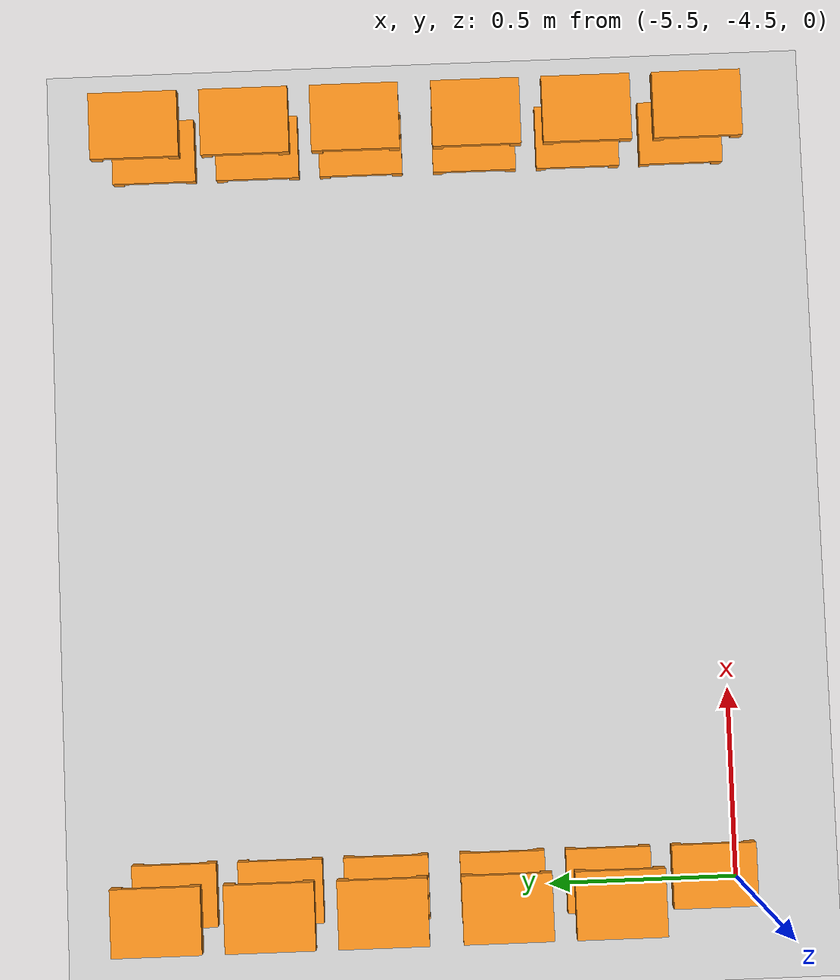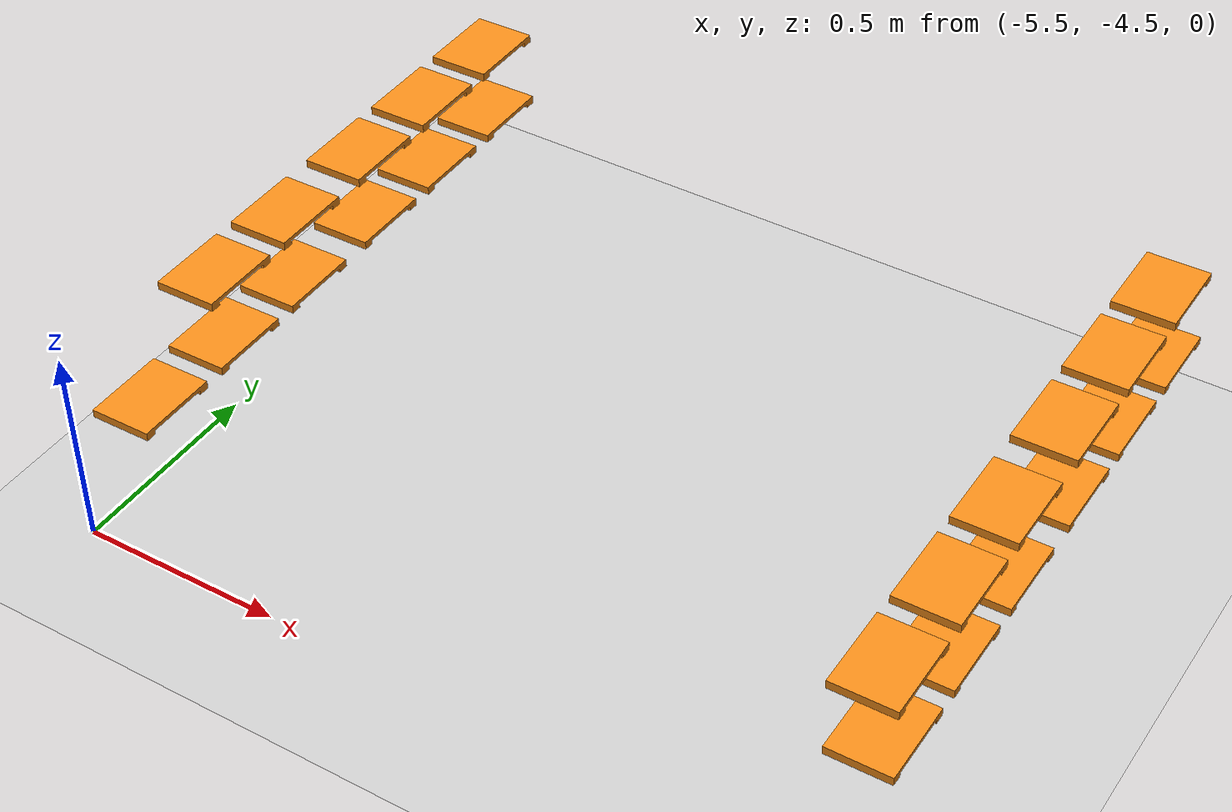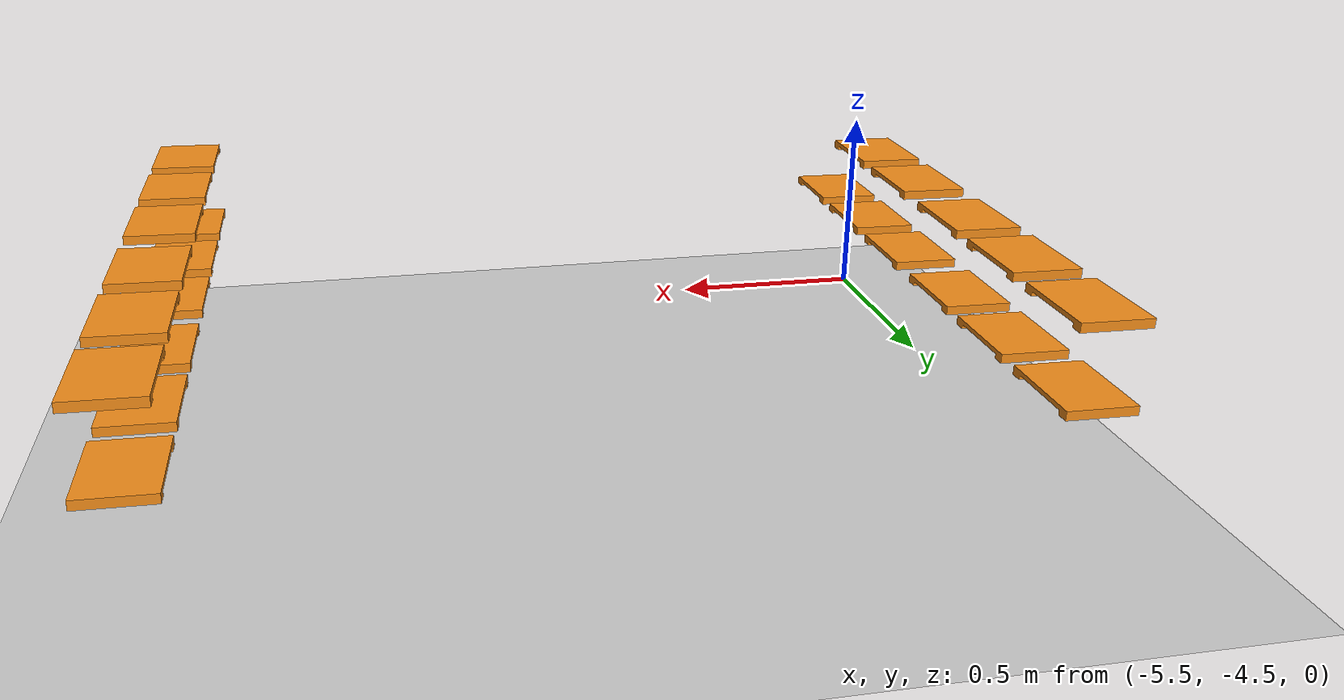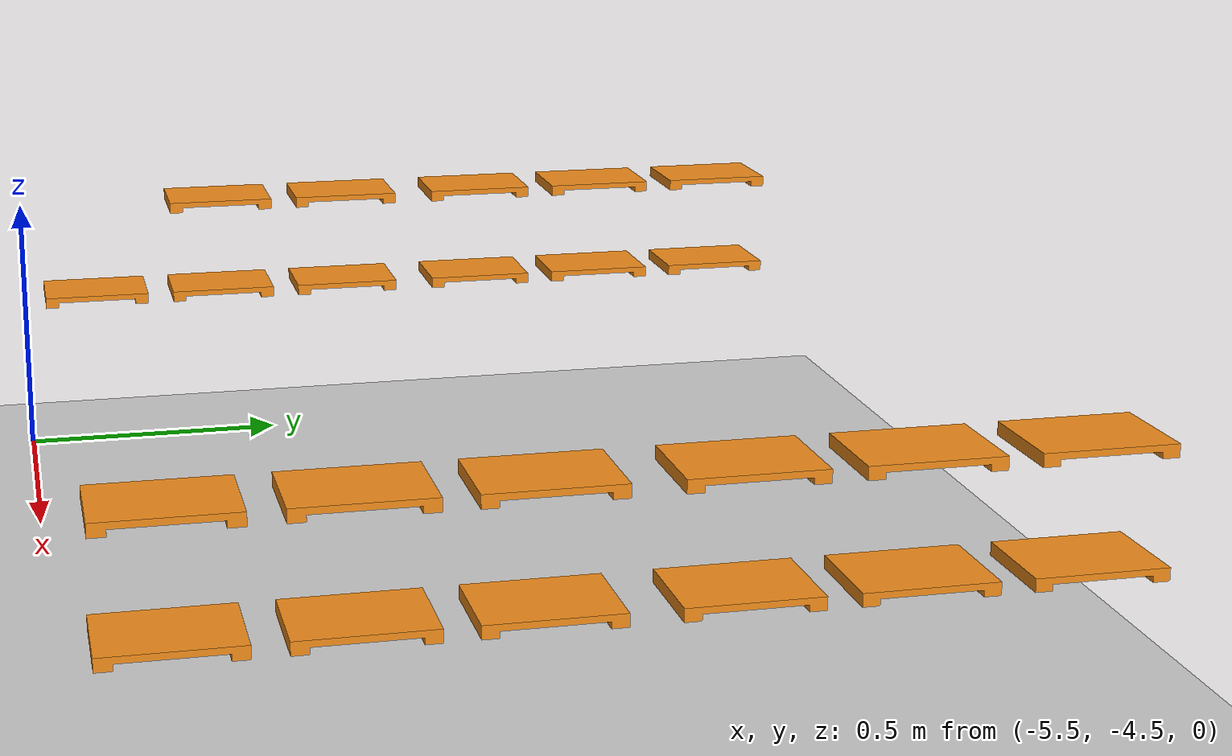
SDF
<sdf version="1.7">
 <world name="default">
  <model name="ground_plane">
   <static>1</static>
   <link name="link">
    <collision name="collision">
     <geometry><plane><normal>0 0 1</normal><size>100 100</size></plane></geometry>
     <surface>
      <contact><collide_bitmask>65535</collide_bitmask></contact>
      <friction><ode><mu>1</mu><mu2>1</mu2></ode></friction>
     </surface>
    </collision>
    <visual name="visual">
     <cast_shadows>0</cast_shadows>
     <geometry><plane><normal>0 0 1</normal><size>100 100</size></plane></geometry>
     <material>
      <script><uri>file://media/materials/scripts/gazebo.material</uri><name>Gazebo/Grey</name></script>
     </material>
    </visual>
   </link>
  </model>
  <model name="pallet_49">
   <pose>-5.39624 -3.088 0.511053 7e-06 -0.012154 -7e-06</pose>
   <link name="link">
    <inertial>
     <pose>0 0 0 0 -0 1.571</pose>
     <inertia>
      <ixx>0.00220983</ixx>
      <ixy>0</ixy>
      <ixz>0</ixz>
      <iyy>0.00128087</iyy>
      <iyz>0</iyz>
      <izz>0.00244903</izz>
     </inertia>
     <mass>0.01</mass>
    </inertial>
    <visual name="visual1">
     <cast_shadows>0</cast_shadows>
     <geometry><mesh><uri>model://pallet/meshes/pallet.stl</uri></mesh></geometry>
     <material>
      <script><uri>file://media/materials/scripts/gazebo.material</uri><name>Gazebo/Orange</name></script>
      <shader type="pixel"><normal_map>__default__</normal_map></shader>
      <emissive>0 0 0 1</emissive>
     </material>
     <pose>0 0 -0 0 -0 1.571</pose>
    </visual>
    <collision name="collision_0">
     <pose>0 0 0 0 -0 1.571</pose>
     <geometry><mesh><uri>model://pallet/meshes/pallet.stl</uri></mesh></geometry>
     <surface>
      <friction>
       <ode><mu>1</mu><mu2>1</mu2><fdir1>0 0 0</fdir1><slip1>0</slip1><slip2>0</slip2></ode>
       <torsional>
        <coefficient>1</coefficient>
        <patch_radius>0</patch_radius>
        <surface_radius>0</surface_radius>
        <use_patch_radius>1</use_patch_radius>
        <ode><slip>0</slip></ode>
       </torsional>
      </friction>
      <bounce><restitution_coefficient>0</restitution_coefficient><threshold>1e+06</threshold></bounce>
      <contact>
       <collide_without_contact>0</collide_without_contact>
       <collide_without_contact_bitmask>1</collide_without_contact_bitmask>
       <collide_bitmask>1</collide_bitmask>
       <ode>
        <soft_cfm>0</soft_cfm>
        <soft_erp>0.2</soft_erp>
        <kp>1e+13</kp>
        <kd>1</kd>
        <max_vel>0.01</max_vel>
        <min_depth>0</min_depth>
       </ode>
       <bullet>
        <split_impulse>1</split_impulse>
        <split_impulse_penetration_threshold>-0.01</split_impulse_penetration_threshold>
        <soft_cfm>0</soft_cfm>
        <soft_erp>0.2</soft_erp>
        <kp>1e+13</kp>
        <kd>1</kd>
       </bullet>
      </contact>
     </surface>
    </collision>
   </link>
   <static>0</static>
  </model>
  <model name="pallet_50">
   <pose>-5.39624 -3.338 0.511051 4.4e-05 -0.012154 2e-06</pose>
   <link name="link">
    <inertial>
     <pose>0 0 0 0 -0 1.571</pose>
     <inertia>
      <ixx>0.00220983</ixx>
      <ixy>0</ixy>
      <ixz>0</ixz>
      <iyy>0.00128087</iyy>
      <iyz>0</iyz>
      <izz>0.00244903</izz>
     </inertia>
     <mass>0.01</mass>
    </inertial>
    <visual name="visual1">
     <cast_shadows>0</cast_shadows>
     <geometry><mesh><uri>model://pallet/meshes/pallet.stl</uri></mesh></geometry>
     <material>
      <script><uri>file://media/materials/scripts/gazebo.material</uri><name>Gazebo/Orange</name></script>
      <shader type="pixel"><normal_map>__default__</normal_map></shader>
      <emissive>0 0 0 1</emissive>
     </material>
     <pose>0 0 -0 0 -0 1.571</pose>
    </visual>
    <collision name="collision_0">
     <pose>0 0 0 0 -0 1.571</pose>
     <geometry><mesh><uri>model://pallet/meshes/pallet.stl</uri></mesh></geometry>
     <surface>
      <friction>
       <ode><mu>1</mu><mu2>1</mu2><fdir1>0 0 0</fdir1><slip1>0</slip1><slip2>0</slip2></ode>
       <torsional>
        <coefficient>1</coefficient>
        <patch_radius>0</patch_radius>
        <surface_radius>0</surface_radius>
        <use_patch_radius>1</use_patch_radius>
        <ode><slip>0</slip></ode>
       </torsional>
      </friction>
      <bounce><restitution_coefficient>0</restitution_coefficient><threshold>1e+06</threshold></bounce>
      <contact>
       <collide_without_contact>0</collide_without_contact>
       <collide_without_contact_bitmask>1</collide_without_contact_bitmask>
       <collide_bitmask>1</collide_bitmask>
       <ode>
        <soft_cfm>0</soft_cfm>
        <soft_erp>0.2</soft_erp>
        <kp>1e+13</kp>
        <kd>1</kd>
        <max_vel>0.01</max_vel>
        <min_depth>0</min_depth>
       </ode>
       <bullet>
        <split_impulse>1</split_impulse>
        <split_impulse_penetration_threshold>-0.01</split_impulse_penetration_threshold>
        <soft_cfm>0</soft_cfm>
        <soft_erp>0.2</soft_erp>
        <kp>1e+13</kp>
        <kd>1</kd>
       </bullet>
      </contact>
     </surface>
    </collision>
   </link>
   <static>0</static>
  </model>
  <model name="pallet_51">
   <pose>-5.39624 -3.588 0.511049 4e-05 -0.012153 3e-06</pose>
   <link name="link">
    <inertial>
     <pose>0 0 0 0 -0 1.571</pose>
     <inertia>
      <ixx>0.00220983</ixx>
      <ixy>0</ixy>
      <ixz>0</ixz>
      <iyy>0.00128087</iyy>
      <iyz>0</iyz>
      <izz>0.00244903</izz>
     </inertia>
     <mass>0.01</mass>
    </inertial>
    <visual name="visual1">
     <cast_shadows>0</cast_shadows>
     <geometry><mesh><uri>model://pallet/meshes/pallet.stl</uri></mesh></geometry>
     <material>
      <script><uri>file://media/materials/scripts/gazebo.material</uri><name>Gazebo/Orange</name></script>
      <shader type="pixel"><normal_map>__default__</normal_map></shader>
      <emissive>0 0 0 1</emissive>
     </material>
     <pose>0 0 -0 0 -0 1.571</pose>
    </visual>
    <collision name="collision_0">
     <pose>0 0 0 0 -0 1.571</pose>
     <geometry><mesh><uri>model://pallet/meshes/pallet.stl</uri></mesh></geometry>
     <surface>
      <friction>
       <ode><mu>1</mu><mu2>1</mu2><fdir1>0 0 0</fdir1><slip1>0</slip1><slip2>0</slip2></ode>
       <torsional>
        <coefficient>1</coefficient>
        <patch_radius>0</patch_radius>
        <surface_radius>0</surface_radius>
        <use_patch_radius>1</use_patch_radius>
        <ode><slip>0</slip></ode>
       </torsional>
      </friction>
      <bounce><restitution_coefficient>0</restitution_coefficient><threshold>1e+06</threshold></bounce>
      <contact>
       <collide_without_contact>0</collide_without_contact>
       <collide_without_contact_bitmask>1</collide_without_contact_bitmask>
       <collide_bitmask>1</collide_bitmask>
       <ode>
        <soft_cfm>0</soft_cfm>
        <soft_erp>0.2</soft_erp>
        <kp>1e+13</kp>
        <kd>1</kd>
        <max_vel>0.01</max_vel>
        <min_depth>0</min_depth>
       </ode>
       <bullet>
        <split_impulse>1</split_impulse>
        <split_impulse_penetration_threshold>-0.01</split_impulse_penetration_threshold>
        <soft_cfm>0</soft_cfm>
        <soft_erp>0.2</soft_erp>
        <kp>1e+13</kp>
        <kd>1</kd>
       </bullet>
      </contact>
     </surface>
    </collision>
   </link>
   <static>0</static>
  </model>
  <model name="pallet_52">
   <pose>-5.39624 -3.8625 0.511052 -0 -0.01216 4e-06</pose>
   <link name="link">
    <inertial>
     <pose>0 0 0 0 -0 1.571</pose>
     <inertia>
      <ixx>0.00220983</ixx>
      <ixy>0</ixy>
      <ixz>0</ixz>
      <iyy>0.00128087</iyy>
      <iyz>0</iyz>
      <izz>0.00244903</izz>
     </inertia>
     <mass>0.01</mass>
    </inertial>
    <visual name="visual1">
     <cast_shadows>0</cast_shadows>
     <geometry><mesh><uri>model://pallet/meshes/pallet.stl</uri></mesh></geometry>
     <material>
      <script><uri>file://media/materials/scripts/gazebo.material</uri><name>Gazebo/Orange</name></script>
      <shader type="pixel"><normal_map>__default__</normal_map></shader>
      <emissive>0 0 0 1</emissive>
     </material>
     <pose>0 0 -0 0 -0 1.571</pose>
    </visual>
    <collision name="collision_0">
     <pose>0 0 0 0 -0 1.571</pose>
     <geometry><mesh><uri>model://pallet/meshes/pallet.stl</uri></mesh></geometry>
     <surface>
      <friction>
       <ode><mu>1</mu><mu2>1</mu2><fdir1>0 0 0</fdir1><slip1>0</slip1><slip2>0</slip2></ode>
       <torsional>
        <coefficient>1</coefficient>
        <patch_radius>0</patch_radius>
        <surface_radius>0</surface_radius>
        <use_patch_radius>1</use_patch_radius>
        <ode><slip>0</slip></ode>
       </torsional>
      </friction>
      <bounce><restitution_coefficient>0</restitution_coefficient><threshold>1e+06</threshold></bounce>
      <contact>
       <collide_without_contact>0</collide_without_contact>
       <collide_without_contact_bitmask>1</collide_without_contact_bitmask>
       <collide_bitmask>1</collide_bitmask>
       <ode>
        <soft_cfm>0</soft_cfm>
        <soft_erp>0.2</soft_erp>
        <kp>1e+13</kp>
        <kd>1</kd>
        <max_vel>0.01</max_vel>
        <min_depth>0</min_depth>
       </ode>
       <bullet>
        <split_impulse>1</split_impulse>
        <split_impulse_penetration_threshold>-0.01</split_impulse_penetration_threshold>
        <soft_cfm>0</soft_cfm>
        <soft_erp>0.2</soft_erp>
        <kp>1e+13</kp>
        <kd>1</kd>
       </bullet>
      </contact>
     </surface>
    </collision>
   </link>
   <static>0</static>
  </model>
  <model name="pallet_53">
   <pose>-5.39623 -4.1125 0.511049 2.3e-05 -0.012155 2e-06</pose>
   <link name="link">
    <inertial>
     <pose>0 0 0 0 -0 1.571</pose>
     <inertia>
      <ixx>0.00220983</ixx>
      <ixy>0</ixy>
      <ixz>0</ixz>
      <iyy>0.00128087</iyy>
      <iyz>0</iyz>
      <izz>0.00244903</izz>
     </inertia>
     <mass>0.01</mass>
    </inertial>
    <visual name="visual1">
     <cast_shadows>0</cast_shadows>
     <geometry><mesh><uri>model://pallet/meshes/pallet.stl</uri></mesh></geometry>
     <material>
      <script><uri>file://media/materials/scripts/gazebo.material</uri><name>Gazebo/Orange</name></script>
      <shader type="pixel"><normal_map>__default__</normal_map></shader>
      <emissive>0 0 0 1</emissive>
     </material>
     <pose>0 0 -0 0 -0 1.571</pose>
    </visual>
    <collision name="collision_0">
     <pose>0 0 0 0 -0 1.571</pose>
     <geometry><mesh><uri>model://pallet/meshes/pallet.stl</uri></mesh></geometry>
     <surface>
      <friction>
       <ode><mu>1</mu><mu2>1</mu2><fdir1>0 0 0</fdir1><slip1>0</slip1><slip2>0</slip2></ode>
       <torsional>
        <coefficient>1</coefficient>
        <patch_radius>0</patch_radius>
        <surface_radius>0</surface_radius>
        <use_patch_radius>1</use_patch_radius>
        <ode><slip>0</slip></ode>
       </torsional>
      </friction>
      <bounce><restitution_coefficient>0</restitution_coefficient><threshold>1e+06</threshold></bounce>
      <contact>
       <collide_without_contact>0</collide_without_contact>
       <collide_without_contact_bitmask>1</collide_without_contact_bitmask>
       <collide_bitmask>1</collide_bitmask>
       <ode>
        <soft_cfm>0</soft_cfm>
        <soft_erp>0.2</soft_erp>
        <kp>1e+13</kp>
        <kd>1</kd>
        <max_vel>0.01</max_vel>
        <min_depth>0</min_depth>
       </ode>
       <bullet>
        <split_impulse>1</split_impulse>
        <split_impulse_penetration_threshold>-0.01</split_impulse_penetration_threshold>
        <soft_cfm>0</soft_cfm>
        <soft_erp>0.2</soft_erp>
        <kp>1e+13</kp>
        <kd>1</kd>
       </bullet>
      </contact>
     </surface>
    </collision>
   </link>
   <static>0</static>
  </model>
  <model name="pallet_61">
   <pose>-5.39405 -3.088 0.331065 7e-06 -0.012154 -4e-06</pose>
   <link name="link">
    <inertial>
     <pose>0 0 0 0 -0 1.571</pose>
     <inertia>
      <ixx>0.00220983</ixx>
      <ixy>0</ixy>
      <ixz>0</ixz>
      <iyy>0.00128087</iyy>
      <iyz>0</iyz>
      <izz>0.00244903</izz>
     </inertia>
     <mass>0.01</mass>
    </inertial>
    <visual name="visual1">
     <cast_shadows>0</cast_shadows>
     <geometry><mesh><uri>model://pallet/meshes/pallet.stl</uri></mesh></geometry>
     <material>
      <script><uri>file://media/materials/scripts/gazebo.material</uri><name>Gazebo/Orange</name></script>
      <shader type="pixel"><normal_map>__default__</normal_map></shader>
      <emissive>0 0 0 1</emissive>
     </material>
     <pose>0 0 -0 0 -0 1.571</pose>
    </visual>
    <collision name="collision_0">
     <pose>0 0 0 0 -0 1.571</pose>
     <geometry><mesh><uri>model://pallet/meshes/pallet.stl</uri></mesh></geometry>
     <surface>
      <friction>
       <ode><mu>1</mu><mu2>1</mu2><fdir1>0 0 0</fdir1><slip1>0</slip1><slip2>0</slip2></ode>
       <torsional>
        <coefficient>1</coefficient>
        <patch_radius>0</patch_radius>
        <surface_radius>0</surface_radius>
        <use_patch_radius>1</use_patch_radius>
        <ode><slip>0</slip></ode>
       </torsional>
      </friction>
      <bounce><restitution_coefficient>0</restitution_coefficient><threshold>1e+06</threshold></bounce>
      <contact>
       <collide_without_contact>0</collide_without_contact>
       <collide_without_contact_bitmask>1</collide_without_contact_bitmask>
       <collide_bitmask>1</collide_bitmask>
       <ode>
        <soft_cfm>0</soft_cfm>
        <soft_erp>0.2</soft_erp>
        <kp>1e+13</kp>
        <kd>1</kd>
        <max_vel>0.01</max_vel>
        <min_depth>0</min_depth>
       </ode>
       <bullet>
        <split_impulse>1</split_impulse>
        <split_impulse_penetration_threshold>-0.01</split_impulse_penetration_threshold>
        <soft_cfm>0</soft_cfm>
        <soft_erp>0.2</soft_erp>
        <kp>1e+13</kp>
        <kd>1</kd>
       </bullet>
      </contact>
     </surface>
    </collision>
   </link>
   <static>0</static>
  </model>
  <model name="pallet_62">
   <pose>-5.39405 -3.338 0.331064 4.1e-05 -0.012155 3e-06</pose>
   <link name="link">
    <inertial>
     <pose>0 0 0 0 -0 1.571</pose>
     <inertia>
      <ixx>0.00220983</ixx>
      <ixy>0</ixy>
      <ixz>0</ixz>
      <iyy>0.00128087</iyy>
      <iyz>0</iyz>
      <izz>0.00244903</izz>
     </inertia>
     <mass>0.01</mass>
    </inertial>
    <visual name="visual1">
     <cast_shadows>0</cast_shadows>
     <geometry><mesh><uri>model://pallet/meshes/pallet.stl</uri></mesh></geometry>
     <material>
      <script><uri>file://media/materials/scripts/gazebo.material</uri><name>Gazebo/Orange</name></script>
      <shader type="pixel"><normal_map>__default__</normal_map></shader>
      <emissive>0 0 0 1</emissive>
     </material>
     <pose>0 0 -0 0 -0 1.571</pose>
    </visual>
    <collision name="collision_0">
     <pose>0 0 0 0 -0 1.571</pose>
     <geometry><mesh><uri>model://pallet/meshes/pallet.stl</uri></mesh></geometry>
     <surface>
      <friction>
       <ode><mu>1</mu><mu2>1</mu2><fdir1>0 0 0</fdir1><slip1>0</slip1><slip2>0</slip2></ode>
       <torsional>
        <coefficient>1</coefficient>
        <patch_radius>0</patch_radius>
        <surface_radius>0</surface_radius>
        <use_patch_radius>1</use_patch_radius>
        <ode><slip>0</slip></ode>
       </torsional>
      </friction>
      <bounce><restitution_coefficient>0</restitution_coefficient><threshold>1e+06</threshold></bounce>
      <contact>
       <collide_without_contact>0</collide_without_contact>
       <collide_without_contact_bitmask>1</collide_without_contact_bitmask>
       <collide_bitmask>1</collide_bitmask>
       <ode>
        <soft_cfm>0</soft_cfm>
        <soft_erp>0.2</soft_erp>
        <kp>1e+13</kp>
        <kd>1</kd>
        <max_vel>0.01</max_vel>
        <min_depth>0</min_depth>
       </ode>
       <bullet>
        <split_impulse>1</split_impulse>
        <split_impulse_penetration_threshold>-0.01</split_impulse_penetration_threshold>
        <soft_cfm>0</soft_cfm>
        <soft_erp>0.2</soft_erp>
        <kp>1e+13</kp>
        <kd>1</kd>
       </bullet>
      </contact>
     </surface>
    </collision>
   </link>
   <static>0</static>
  </model>
  <model name="pallet_63">
   <pose>-5.39405 -3.588 0.331063 3.6e-05 -0.012153 5e-06</pose>
   <link name="link">
    <inertial>
     <pose>0 0 0 0 -0 1.571</pose>
     <inertia>
      <ixx>0.00220983</ixx>
      <ixy>0</ixy>
      <ixz>0</ixz>
      <iyy>0.00128087</iyy>
      <iyz>0</iyz>
      <izz>0.00244903</izz>
     </inertia>
     <mass>0.01</mass>
    </inertial>
    <visual name="visual1">
     <cast_shadows>0</cast_shadows>
     <geometry><mesh><uri>model://pallet/meshes/pallet.stl</uri></mesh></geometry>
     <material>
      <script><uri>file://media/materials/scripts/gazebo.material</uri><name>Gazebo/Orange</name></script>
      <shader type="pixel"><normal_map>__default__</normal_map></shader>
      <emissive>0 0 0 1</emissive>
     </material>
     <pose>0 0 -0 0 -0 1.571</pose>
    </visual>
    <collision name="collision_0">
     <pose>0 0 0 0 -0 1.571</pose>
     <geometry><mesh><uri>model://pallet/meshes/pallet.stl</uri></mesh></geometry>
     <surface>
      <friction>
       <ode><mu>1</mu><mu2>1</mu2><fdir1>0 0 0</fdir1><slip1>0</slip1><slip2>0</slip2></ode>
       <torsional>
        <coefficient>1</coefficient>
        <patch_radius>0</patch_radius>
        <surface_radius>0</surface_radius>
        <use_patch_radius>1</use_patch_radius>
        <ode><slip>0</slip></ode>
       </torsional>
      </friction>
      <bounce><restitution_coefficient>0</restitution_coefficient><threshold>1e+06</threshold></bounce>
      <contact>
       <collide_without_contact>0</collide_without_contact>
       <collide_without_contact_bitmask>1</collide_without_contact_bitmask>
       <collide_bitmask>1</collide_bitmask>
       <ode>
        <soft_cfm>0</soft_cfm>
        <soft_erp>0.2</soft_erp>
        <kp>1e+13</kp>
        <kd>1</kd>
        <max_vel>0.01</max_vel>
        <min_depth>0</min_depth>
       </ode>
       <bullet>
        <split_impulse>1</split_impulse>
        <split_impulse_penetration_threshold>-0.01</split_impulse_penetration_threshold>
        <soft_cfm>0</soft_cfm>
        <soft_erp>0.2</soft_erp>
        <kp>1e+13</kp>
        <kd>1</kd>
       </bullet>
      </contact>
     </surface>
    </collision>
   </link>
   <static>0</static>
  </model>
  <model name="pallet_64">
   <pose>-5.39405 -3.8625 0.331065 6e-06 -0.012161 4e-06</pose>
   <link name="link">
    <inertial>
     <pose>0 0 0 0 -0 1.571</pose>
     <inertia>
      <ixx>0.00220983</ixx>
      <ixy>0</ixy>
      <ixz>0</ixz>
      <iyy>0.00128087</iyy>
      <iyz>0</iyz>
      <izz>0.00244903</izz>
     </inertia>
     <mass>0.01</mass>
    </inertial>
    <visual name="visual1">
     <cast_shadows>0</cast_shadows>
     <geometry><mesh><uri>model://pallet/meshes/pallet.stl</uri></mesh></geometry>
     <material>
      <script><uri>file://media/materials/scripts/gazebo.material</uri><name>Gazebo/Orange</name></script>
      <shader type="pixel"><normal_map>__default__</normal_map></shader>
      <emissive>0 0 0 1</emissive>
     </material>
     <pose>0 0 -0 0 -0 1.571</pose>
    </visual>
    <collision name="collision_0">
     <pose>0 0 0 0 -0 1.571</pose>
     <geometry><mesh><uri>model://pallet/meshes/pallet.stl</uri></mesh></geometry>
     <surface>
      <friction>
       <ode><mu>1</mu><mu2>1</mu2><fdir1>0 0 0</fdir1><slip1>0</slip1><slip2>0</slip2></ode>
       <torsional>
        <coefficient>1</coefficient>
        <patch_radius>0</patch_radius>
        <surface_radius>0</surface_radius>
        <use_patch_radius>1</use_patch_radius>
        <ode><slip>0</slip></ode>
       </torsional>
      </friction>
      <bounce><restitution_coefficient>0</restitution_coefficient><threshold>1e+06</threshold></bounce>
      <contact>
       <collide_without_contact>0</collide_without_contact>
       <collide_without_contact_bitmask>1</collide_without_contact_bitmask>
       <collide_bitmask>1</collide_bitmask>
       <ode>
        <soft_cfm>0</soft_cfm>
        <soft_erp>0.2</soft_erp>
        <kp>1e+13</kp>
        <kd>1</kd>
        <max_vel>0.01</max_vel>
        <min_depth>0</min_depth>
       </ode>
       <bullet>
        <split_impulse>1</split_impulse>
        <split_impulse_penetration_threshold>-0.01</split_impulse_penetration_threshold>
        <soft_cfm>0</soft_cfm>
        <soft_erp>0.2</soft_erp>
        <kp>1e+13</kp>
        <kd>1</kd>
       </bullet>
      </contact>
     </surface>
    </collision>
   </link>
   <static>0</static>
  </model>
  <model name="pallet_65">
   <pose>-5.39405 -4.1125 0.331062 3.8e-05 -0.012154 7e-06</pose>
   <link name="link">
    <inertial>
     <pose>0 0 0 0 -0 1.571</pose>
     <inertia>
      <ixx>0.00220983</ixx>
      <ixy>0</ixy>
      <ixz>0</ixz>
      <iyy>0.00128087</iyy>
      <iyz>0</iyz>
      <izz>0.00244903</izz>
     </inertia>
     <mass>0.01</mass>
    </inertial>
    <visual name="visual1">
     <cast_shadows>0</cast_shadows>
     <geometry><mesh><uri>model://pallet/meshes/pallet.stl</uri></mesh></geometry>
     <material>
      <script><uri>file://media/materials/scripts/gazebo.material</uri><name>Gazebo/Orange</name></script>
      <shader type="pixel"><normal_map>__default__</normal_map></shader>
      <emissive>0 0 0 1</emissive>
     </material>
     <pose>0 0 -0 0 -0 1.571</pose>
    </visual>
    <collision name="collision_0">
     <pose>0 0 0 0 -0 1.571</pose>
     <geometry><mesh><uri>model://pallet/meshes/pallet.stl</uri></mesh></geometry>
     <surface>
      <friction>
       <ode><mu>1</mu><mu2>1</mu2><fdir1>0 0 0</fdir1><slip1>0</slip1><slip2>0</slip2></ode>
       <torsional>
        <coefficient>1</coefficient>
        <patch_radius>0</patch_radius>
        <surface_radius>0</surface_radius>
        <use_patch_radius>1</use_patch_radius>
        <ode><slip>0</slip></ode>
       </torsional>
      </friction>
      <bounce><restitution_coefficient>0</restitution_coefficient><threshold>1e+06</threshold></bounce>
      <contact>
       <collide_without_contact>0</collide_without_contact>
       <collide_without_contact_bitmask>1</collide_without_contact_bitmask>
       <collide_bitmask>1</collide_bitmask>
       <ode>
        <soft_cfm>0</soft_cfm>
        <soft_erp>0.2</soft_erp>
        <kp>1e+13</kp>
        <kd>1</kd>
        <max_vel>0.01</max_vel>
        <min_depth>0</min_depth>
       </ode>
       <bullet>
        <split_impulse>1</split_impulse>
        <split_impulse_penetration_threshold>-0.01</split_impulse_penetration_threshold>
        <soft_cfm>0</soft_cfm>
        <soft_erp>0.2</soft_erp>
        <kp>1e+13</kp>
        <kd>1</kd>
       </bullet>
      </contact>
     </surface>
    </collision>
   </link>
   <static>0</static>
  </model>
  <model name="pallet_66">
   <pose>-5.39404 -4.3625 0.331062 3.1e-05 -0.012154 8e-06</pose>
   <link name="link">
    <inertial>
     <pose>0 0 0 0 -0 1.571</pose>
     <inertia>
      <ixx>0.00220983</ixx>
      <ixy>0</ixy>
      <ixz>0</ixz>
      <iyy>0.00128087</iyy>
      <iyz>0</iyz>
      <izz>0.00244903</izz>
     </inertia>
     <mass>0.01</mass>
    </inertial>
    <visual name="visual1">
     <cast_shadows>0</cast_shadows>
     <geometry><mesh><uri>model://pallet/meshes/pallet.stl</uri></mesh></geometry>
     <material>
      <script><uri>file://media/materials/scripts/gazebo.material</uri><name>Gazebo/Orange</name></script>
      <shader type="pixel"><normal_map>__default__</normal_map></shader>
      <emissive>0 0 0 1</emissive>
     </material>
     <pose>0 0 -0 0 -0 1.571</pose>
    </visual>
    <collision name="collision_0">
     <pose>0 0 0 0 -0 1.571</pose>
     <geometry><mesh><uri>model://pallet/meshes/pallet.stl</uri></mesh></geometry>
     <surface>
      <friction>
       <ode><mu>1</mu><mu2>1</mu2><fdir1>0 0 0</fdir1><slip1>0</slip1><slip2>0</slip2></ode>
       <torsional>
        <coefficient>1</coefficient>
        <patch_radius>0</patch_radius>
        <surface_radius>0</surface_radius>
        <use_patch_radius>1</use_patch_radius>
        <ode><slip>0</slip></ode>
       </torsional>
      </friction>
      <bounce><restitution_coefficient>0</restitution_coefficient><threshold>1e+06</threshold></bounce>
      <contact>
       <collide_without_contact>0</collide_without_contact>
       <collide_without_contact_bitmask>1</collide_without_contact_bitmask>
       <collide_bitmask>1</collide_bitmask>
       <ode>
        <soft_cfm>0</soft_cfm>
        <soft_erp>0.2</soft_erp>
        <kp>1e+13</kp>
        <kd>1</kd>
        <max_vel>0.01</max_vel>
        <min_depth>0</min_depth>
       </ode>
       <bullet>
        <split_impulse>1</split_impulse>
        <split_impulse_penetration_threshold>-0.01</split_impulse_penetration_threshold>
        <soft_cfm>0</soft_cfm>
        <soft_erp>0.2</soft_erp>
        <kp>1e+13</kp>
        <kd>1</kd>
       </bullet>
      </contact>
     </surface>
    </collision>
   </link>
   <static>0</static>
  </model>
  <model name="pallet_73">
   <pose>-3.61435 -3.088 0.330994 5e-06 -0.013046 -3e-06</pose>
   <link name="link">
    <inertial>
     <pose>0 0 0 0 -0 1.571</pose>
     <inertia>
      <ixx>0.00220983</ixx>
      <ixy>0</ixy>
      <ixz>0</ixz>
      <iyy>0.00128087</iyy>
      <iyz>0</iyz>
      <izz>0.00244903</izz>
     </inertia>
     <mass>0.01</mass>
    </inertial>
    <visual name="visual1">
     <cast_shadows>0</cast_shadows>
     <geometry><mesh><uri>model://pallet/meshes/pallet.stl</uri></mesh></geometry>
     <material>
      <script><uri>file://media/materials/scripts/gazebo.material</uri><name>Gazebo/Orange</name></script>
      <shader type="pixel"><normal_map>__default__</normal_map></shader>
      <emissive>0 0 0 1</emissive>
     </material>
     <pose>0 0 -0 0 -0 1.571</pose>
    </visual>
    <collision name="collision_0">
     <pose>0 0 0 0 -0 1.571</pose>
     <geometry><mesh><uri>model://pallet/meshes/pallet.stl</uri></mesh></geometry>
     <surface>
      <friction>
       <ode><mu>1</mu><mu2>1</mu2><fdir1>0 0 0</fdir1><slip1>0</slip1><slip2>0</slip2></ode>
       <torsional>
        <coefficient>1</coefficient>
        <patch_radius>0</patch_radius>
        <surface_radius>0</surface_radius>
        <use_patch_radius>1</use_patch_radius>
        <ode><slip>0</slip></ode>
       </torsional>
      </friction>
      <bounce><restitution_coefficient>0</restitution_coefficient><threshold>1e+06</threshold></bounce>
      <contact>
       <collide_without_contact>0</collide_without_contact>
       <collide_without_contact_bitmask>1</collide_without_contact_bitmask>
       <collide_bitmask>1</collide_bitmask>
       <ode>
        <soft_cfm>0</soft_cfm>
        <soft_erp>0.2</soft_erp>
        <kp>1e+13</kp>
        <kd>1</kd>
        <max_vel>0.01</max_vel>
        <min_depth>0</min_depth>
       </ode>
       <bullet>
        <split_impulse>1</split_impulse>
        <split_impulse_penetration_threshold>-0.01</split_impulse_penetration_threshold>
        <soft_cfm>0</soft_cfm>
        <soft_erp>0.2</soft_erp>
        <kp>1e+13</kp>
        <kd>1</kd>
       </bullet>
      </contact>
     </surface>
    </collision>
   </link>
   <static>0</static>
  </model>
  <model name="pallet_74">
   <pose>-3.61435 -3.338 0.330994 4.1e-05 -0.013042 6e-06</pose>
   <link name="link">
    <inertial>
     <pose>0 0 0 0 -0 1.571</pose>
     <inertia>
      <ixx>0.00220983</ixx>
      <ixy>0</ixy>
      <ixz>0</ixz>
      <iyy>0.00128087</iyy>
      <iyz>0</iyz>
      <izz>0.00244903</izz>
     </inertia>
     <mass>0.01</mass>
    </inertial>
    <visual name="visual1">
     <cast_shadows>0</cast_shadows>
     <geometry><mesh><uri>model://pallet/meshes/pallet.stl</uri></mesh></geometry>
     <material>
      <script><uri>file://media/materials/scripts/gazebo.material</uri><name>Gazebo/Orange</name></script>
      <shader type="pixel"><normal_map>__default__</normal_map></shader>
      <emissive>0 0 0 1</emissive>
     </material>
     <pose>0 0 -0 0 -0 1.571</pose>
    </visual>
    <collision name="collision_0">
     <pose>0 0 0 0 -0 1.571</pose>
     <geometry><mesh><uri>model://pallet/meshes/pallet.stl</uri></mesh></geometry>
     <surface>
      <friction>
       <ode><mu>1</mu><mu2>1</mu2><fdir1>0 0 0</fdir1><slip1>0</slip1><slip2>0</slip2></ode>
       <torsional>
        <coefficient>1</coefficient>
        <patch_radius>0</patch_radius>
        <surface_radius>0</surface_radius>
        <use_patch_radius>1</use_patch_radius>
        <ode><slip>0</slip></ode>
       </torsional>
      </friction>
      <bounce><restitution_coefficient>0</restitution_coefficient><threshold>1e+06</threshold></bounce>
      <contact>
       <collide_without_contact>0</collide_without_contact>
       <collide_without_contact_bitmask>1</collide_without_contact_bitmask>
       <collide_bitmask>1</collide_bitmask>
       <ode>
        <soft_cfm>0</soft_cfm>
        <soft_erp>0.2</soft_erp>
        <kp>1e+13</kp>
        <kd>1</kd>
        <max_vel>0.01</max_vel>
        <min_depth>0</min_depth>
       </ode>
       <bullet>
        <split_impulse>1</split_impulse>
        <split_impulse_penetration_threshold>-0.01</split_impulse_penetration_threshold>
        <soft_cfm>0</soft_cfm>
        <soft_erp>0.2</soft_erp>
        <kp>1e+13</kp>
        <kd>1</kd>
       </bullet>
      </contact>
     </surface>
    </collision>
   </link>
   <static>0</static>
  </model>
  <model name="pallet_75">
   <pose>-3.61435 -3.588 0.330994 2.6e-05 -0.013042 1.2e-05</pose>
   <link name="link">
    <inertial>
     <pose>0 0 0 0 -0 1.571</pose>
     <inertia>
      <ixx>0.00220983</ixx>
      <ixy>0</ixy>
      <ixz>0</ixz>
      <iyy>0.00128087</iyy>
      <iyz>0</iyz>
      <izz>0.00244903</izz>
     </inertia>
     <mass>0.01</mass>
    </inertial>
    <visual name="visual1">
     <cast_shadows>0</cast_shadows>
     <geometry><mesh><uri>model://pallet/meshes/pallet.stl</uri></mesh></geometry>
     <material>
      <script><uri>file://media/materials/scripts/gazebo.material</uri><name>Gazebo/Orange</name></script>
      <shader type="pixel"><normal_map>__default__</normal_map></shader>
      <emissive>0 0 0 1</emissive>
     </material>
     <pose>0 0 -0 0 -0 1.571</pose>
    </visual>
    <collision name="collision_0">
     <pose>0 0 0 0 -0 1.571</pose>
     <geometry><mesh><uri>model://pallet/meshes/pallet.stl</uri></mesh></geometry>
     <surface>
      <friction>
       <ode><mu>1</mu><mu2>1</mu2><fdir1>0 0 0</fdir1><slip1>0</slip1><slip2>0</slip2></ode>
       <torsional>
        <coefficient>1</coefficient>
        <patch_radius>0</patch_radius>
        <surface_radius>0</surface_radius>
        <use_patch_radius>1</use_patch_radius>
        <ode><slip>0</slip></ode>
       </torsional>
      </friction>
      <bounce><restitution_coefficient>0</restitution_coefficient><threshold>1e+06</threshold></bounce>
      <contact>
       <collide_without_contact>0</collide_without_contact>
       <collide_without_contact_bitmask>1</collide_without_contact_bitmask>
       <collide_bitmask>1</collide_bitmask>
       <ode>
        <soft_cfm>0</soft_cfm>
        <soft_erp>0.2</soft_erp>
        <kp>1e+13</kp>
        <kd>1</kd>
        <max_vel>0.01</max_vel>
        <min_depth>0</min_depth>
       </ode>
       <bullet>
        <split_impulse>1</split_impulse>
        <split_impulse_penetration_threshold>-0.01</split_impulse_penetration_threshold>
        <soft_cfm>0</soft_cfm>
        <soft_erp>0.2</soft_erp>
        <kp>1e+13</kp>
        <kd>1</kd>
       </bullet>
      </contact>
     </surface>
    </collision>
   </link>
   <static>0</static>
  </model>
  <model name="pallet_76">
   <pose>-3.61434 -3.8625 0.330995 1.1e-05 -0.013046 7e-06</pose>
   <link name="link">
    <inertial>
     <pose>0 0 0 0 -0 1.571</pose>
     <inertia>
      <ixx>0.00220983</ixx>
      <ixy>0</ixy>
      <ixz>0</ixz>
      <iyy>0.00128087</iyy>
      <iyz>0</iyz>
      <izz>0.00244903</izz>
     </inertia>
     <mass>0.01</mass>
    </inertial>
    <visual name="visual1">
     <cast_shadows>0</cast_shadows>
     <geometry><mesh><uri>model://pallet/meshes/pallet.stl</uri></mesh></geometry>
     <material>
      <script><uri>file://media/materials/scripts/gazebo.material</uri><name>Gazebo/Orange</name></script>
      <shader type="pixel"><normal_map>__default__</normal_map></shader>
      <emissive>0 0 0 1</emissive>
     </material>
     <pose>0 0 -0 0 -0 1.571</pose>
    </visual>
    <collision name="collision_0">
     <pose>0 0 0 0 -0 1.571</pose>
     <geometry><mesh><uri>model://pallet/meshes/pallet.stl</uri></mesh></geometry>
     <surface>
      <friction>
       <ode><mu>1</mu><mu2>1</mu2><fdir1>0 0 0</fdir1><slip1>0</slip1><slip2>0</slip2></ode>
       <torsional>
        <coefficient>1</coefficient>
        <patch_radius>0</patch_radius>
        <surface_radius>0</surface_radius>
        <use_patch_radius>1</use_patch_radius>
        <ode><slip>0</slip></ode>
       </torsional>
      </friction>
      <bounce><restitution_coefficient>0</restitution_coefficient><threshold>1e+06</threshold></bounce>
      <contact>
       <collide_without_contact>0</collide_without_contact>
       <collide_without_contact_bitmask>1</collide_without_contact_bitmask>
       <collide_bitmask>1</collide_bitmask>
       <ode>
        <soft_cfm>0</soft_cfm>
        <soft_erp>0.2</soft_erp>
        <kp>1e+13</kp>
        <kd>1</kd>
        <max_vel>0.01</max_vel>
        <min_depth>0</min_depth>
       </ode>
       <bullet>
        <split_impulse>1</split_impulse>
        <split_impulse_penetration_threshold>-0.01</split_impulse_penetration_threshold>
        <soft_cfm>0</soft_cfm>
        <soft_erp>0.2</soft_erp>
        <kp>1e+13</kp>
        <kd>1</kd>
       </bullet>
      </contact>
     </surface>
    </collision>
   </link>
   <static>0</static>
  </model>
  <model name="pallet_77">
   <pose>-3.61434 -4.1125 0.330993 2.7e-05 -0.013042 7e-06</pose>
   <link name="link">
    <inertial>
     <pose>0 0 0 0 -0 1.571</pose>
     <inertia>
      <ixx>0.00220983</ixx>
      <ixy>0</ixy>
      <ixz>0</ixz>
      <iyy>0.00128087</iyy>
      <iyz>0</iyz>
      <izz>0.00244903</izz>
     </inertia>
     <mass>0.01</mass>
    </inertial>
    <visual name="visual1">
     <cast_shadows>0</cast_shadows>
     <geometry><mesh><uri>model://pallet/meshes/pallet.stl</uri></mesh></geometry>
     <material>
      <script><uri>file://media/materials/scripts/gazebo.material</uri><name>Gazebo/Orange</name></script>
      <shader type="pixel"><normal_map>__default__</normal_map></shader>
      <emissive>0 0 0 1</emissive>
     </material>
     <pose>0 0 -0 0 -0 1.571</pose>
    </visual>
    <collision name="collision_0">
     <pose>0 0 0 0 -0 1.571</pose>
     <geometry><mesh><uri>model://pallet/meshes/pallet.stl</uri></mesh></geometry>
     <surface>
      <friction>
       <ode><mu>1</mu><mu2>1</mu2><fdir1>0 0 0</fdir1><slip1>0</slip1><slip2>0</slip2></ode>
       <torsional>
        <coefficient>1</coefficient>
        <patch_radius>0</patch_radius>
        <surface_radius>0</surface_radius>
        <use_patch_radius>1</use_patch_radius>
        <ode><slip>0</slip></ode>
       </torsional>
      </friction>
      <bounce><restitution_coefficient>0</restitution_coefficient><threshold>1e+06</threshold></bounce>
      <contact>
       <collide_without_contact>0</collide_without_contact>
       <collide_without_contact_bitmask>1</collide_without_contact_bitmask>
       <collide_bitmask>1</collide_bitmask>
       <ode>
        <soft_cfm>0</soft_cfm>
        <soft_erp>0.2</soft_erp>
        <kp>1e+13</kp>
        <kd>1</kd>
        <max_vel>0.01</max_vel>
        <min_depth>0</min_depth>
       </ode>
       <bullet>
        <split_impulse>1</split_impulse>
        <split_impulse_penetration_threshold>-0.01</split_impulse_penetration_threshold>
        <soft_cfm>0</soft_cfm>
        <soft_erp>0.2</soft_erp>
        <kp>1e+13</kp>
        <kd>1</kd>
       </bullet>
      </contact>
     </surface>
    </collision>
   </link>
   <static>0</static>
  </model>
  <model name="pallet_78">
   <pose>-3.61434 -4.3625 0.330992 2.4e-05 -0.013042 7e-06</pose>
   <link name="link">
    <inertial>
     <pose>0 0 0 0 -0 1.571</pose>
     <inertia>
      <ixx>0.00220983</ixx>
      <ixy>0</ixy>
      <ixz>0</ixz>
      <iyy>0.00128087</iyy>
      <iyz>0</iyz>
      <izz>0.00244903</izz>
     </inertia>
     <mass>0.01</mass>
    </inertial>
    <visual name="visual1">
     <cast_shadows>0</cast_shadows>
     <geometry><mesh><uri>model://pallet/meshes/pallet.stl</uri></mesh></geometry>
     <material>
      <script><uri>file://media/materials/scripts/gazebo.material</uri><name>Gazebo/Orange</name></script>
      <shader type="pixel"><normal_map>__default__</normal_map></shader>
      <emissive>0 0 0 1</emissive>
     </material>
     <pose>0 0 -0 0 -0 1.571</pose>
    </visual>
    <collision name="collision_0">
     <pose>0 0 0 0 -0 1.571</pose>
     <geometry><mesh><uri>model://pallet/meshes/pallet.stl</uri></mesh></geometry>
     <surface>
      <friction>
       <ode><mu>1</mu><mu2>1</mu2><fdir1>0 0 0</fdir1><slip1>0</slip1><slip2>0</slip2></ode>
       <torsional>
        <coefficient>1</coefficient>
        <patch_radius>0</patch_radius>
        <surface_radius>0</surface_radius>
        <use_patch_radius>1</use_patch_radius>
        <ode><slip>0</slip></ode>
       </torsional>
      </friction>
      <bounce><restitution_coefficient>0</restitution_coefficient><threshold>1e+06</threshold></bounce>
      <contact>
       <collide_without_contact>0</collide_without_contact>
       <collide_without_contact_bitmask>1</collide_without_contact_bitmask>
       <collide_bitmask>1</collide_bitmask>
       <ode>
        <soft_cfm>0</soft_cfm>
        <soft_erp>0.2</soft_erp>
        <kp>1e+13</kp>
        <kd>1</kd>
        <max_vel>0.01</max_vel>
        <min_depth>0</min_depth>
       </ode>
       <bullet>
        <split_impulse>1</split_impulse>
        <split_impulse_penetration_threshold>-0.01</split_impulse_penetration_threshold>
        <soft_cfm>0</soft_cfm>
        <soft_erp>0.2</soft_erp>
        <kp>1e+13</kp>
        <kd>1</kd>
       </bullet>
      </contact>
     </surface>
    </collision>
   </link>
   <static>0</static>
  </model>
  <model name="pallet_85">
   <pose>-3.6167 -3.088 0.510982 8e-06 -0.013046 -1e-06</pose>
   <link name="link">
    <inertial>
     <pose>0 0 0 0 -0 1.571</pose>
     <inertia>
      <ixx>0.00220983</ixx>
      <ixy>0</ixy>
      <ixz>0</ixz>
      <iyy>0.00128087</iyy>
      <iyz>0</iyz>
      <izz>0.00244903</izz>
     </inertia>
     <mass>0.01</mass>
    </inertial>
    <visual name="visual1">
     <cast_shadows>0</cast_shadows>
     <geometry><mesh><uri>model://pallet/meshes/pallet.stl</uri></mesh></geometry>
     <material>
      <script><uri>file://media/materials/scripts/gazebo.material</uri><name>Gazebo/Orange</name></script>
      <shader type="pixel"><normal_map>__default__</normal_map></shader>
      <emissive>0 0 0 1</emissive>
     </material>
     <pose>0 0 -0 0 -0 1.571</pose>
    </visual>
    <collision name="collision_0">
     <pose>0 0 0 0 -0 1.571</pose>
     <geometry><mesh><uri>model://pallet/meshes/pallet.stl</uri></mesh></geometry>
     <surface>
      <friction>
       <ode><mu>1</mu><mu2>1</mu2><fdir1>0 0 0</fdir1><slip1>0</slip1><slip2>0</slip2></ode>
       <torsional>
        <coefficient>1</coefficient>
        <patch_radius>0</patch_radius>
        <surface_radius>0</surface_radius>
        <use_patch_radius>1</use_patch_radius>
        <ode><slip>0</slip></ode>
       </torsional>
      </friction>
      <bounce><restitution_coefficient>0</restitution_coefficient><threshold>1e+06</threshold></bounce>
      <contact>
       <collide_without_contact>0</collide_without_contact>
       <collide_without_contact_bitmask>1</collide_without_contact_bitmask>
       <collide_bitmask>1</collide_bitmask>
       <ode>
        <soft_cfm>0</soft_cfm>
        <soft_erp>0.2</soft_erp>
        <kp>1e+13</kp>
        <kd>1</kd>
        <max_vel>0.01</max_vel>
        <min_depth>0</min_depth>
       </ode>
       <bullet>
        <split_impulse>1</split_impulse>
        <split_impulse_penetration_threshold>-0.01</split_impulse_penetration_threshold>
        <soft_cfm>0</soft_cfm>
        <soft_erp>0.2</soft_erp>
        <kp>1e+13</kp>
        <kd>1</kd>
       </bullet>
      </contact>
     </surface>
    </collision>
   </link>
   <static>0</static>
  </model>
  <model name="pallet_86">
   <pose>-3.6167 -3.338 0.510979 4e-05 -0.013042 5e-06</pose>
   <link name="link">
    <inertial>
     <pose>0 0 0 0 -0 1.571</pose>
     <inertia>
      <ixx>0.00220983</ixx>
      <ixy>0</ixy>
      <ixz>0</ixz>
      <iyy>0.00128087</iyy>
      <iyz>0</iyz>
      <izz>0.00244903</izz>
     </inertia>
     <mass>0.01</mass>
    </inertial>
    <visual name="visual1">
     <cast_shadows>0</cast_shadows>
     <geometry><mesh><uri>model://pallet/meshes/pallet.stl</uri></mesh></geometry>
     <material>
      <script><uri>file://media/materials/scripts/gazebo.material</uri><name>Gazebo/Orange</name></script>
      <shader type="pixel"><normal_map>__default__</normal_map></shader>
      <emissive>0 0 0 1</emissive>
     </material>
     <pose>0 0 -0 0 -0 1.571</pose>
    </visual>
    <collision name="collision_0">
     <pose>0 0 0 0 -0 1.571</pose>
     <geometry><mesh><uri>model://pallet/meshes/pallet.stl</uri></mesh></geometry>
     <surface>
      <friction>
       <ode><mu>1</mu><mu2>1</mu2><fdir1>0 0 0</fdir1><slip1>0</slip1><slip2>0</slip2></ode>
       <torsional>
        <coefficient>1</coefficient>
        <patch_radius>0</patch_radius>
        <surface_radius>0</surface_radius>
        <use_patch_radius>1</use_patch_radius>
        <ode><slip>0</slip></ode>
       </torsional>
      </friction>
      <bounce><restitution_coefficient>0</restitution_coefficient><threshold>1e+06</threshold></bounce>
      <contact>
       <collide_without_contact>0</collide_without_contact>
       <collide_without_contact_bitmask>1</collide_without_contact_bitmask>
       <collide_bitmask>1</collide_bitmask>
       <ode>
        <soft_cfm>0</soft_cfm>
        <soft_erp>0.2</soft_erp>
        <kp>1e+13</kp>
        <kd>1</kd>
        <max_vel>0.01</max_vel>
        <min_depth>0</min_depth>
       </ode>
       <bullet>
        <split_impulse>1</split_impulse>
        <split_impulse_penetration_threshold>-0.01</split_impulse_penetration_threshold>
        <soft_cfm>0</soft_cfm>
        <soft_erp>0.2</soft_erp>
        <kp>1e+13</kp>
        <kd>1</kd>
       </bullet>
      </contact>
     </surface>
    </collision>
   </link>
   <static>0</static>
  </model>
  <model name="pallet_87">
   <pose>-3.61669 -3.588 0.510978 4.3e-05 -0.013043 1e-05</pose>
   <link name="link">
    <inertial>
     <pose>0 0 0 0 -0 1.571</pose>
     <inertia>
      <ixx>0.00220983</ixx>
      <ixy>0</ixy>
      <ixz>0</ixz>
      <iyy>0.00128087</iyy>
      <iyz>0</iyz>
      <izz>0.00244903</izz>
     </inertia>
     <mass>0.01</mass>
    </inertial>
    <visual name="visual1">
     <cast_shadows>0</cast_shadows>
     <geometry><mesh><uri>model://pallet/meshes/pallet.stl</uri></mesh></geometry>
     <material>
      <script><uri>file://media/materials/scripts/gazebo.material</uri><name>Gazebo/Orange</name></script>
      <shader type="pixel"><normal_map>__default__</normal_map></shader>
      <emissive>0 0 0 1</emissive>
     </material>
     <pose>0 0 -0 0 -0 1.571</pose>
    </visual>
    <collision name="collision_0">
     <pose>0 0 0 0 -0 1.571</pose>
     <geometry><mesh><uri>model://pallet/meshes/pallet.stl</uri></mesh></geometry>
     <surface>
      <friction>
       <ode><mu>1</mu><mu2>1</mu2><fdir1>0 0 0</fdir1><slip1>0</slip1><slip2>0</slip2></ode>
       <torsional>
        <coefficient>1</coefficient>
        <patch_radius>0</patch_radius>
        <surface_radius>0</surface_radius>
        <use_patch_radius>1</use_patch_radius>
        <ode><slip>0</slip></ode>
       </torsional>
      </friction>
      <bounce><restitution_coefficient>0</restitution_coefficient><threshold>1e+06</threshold></bounce>
      <contact>
       <collide_without_contact>0</collide_without_contact>
       <collide_without_contact_bitmask>1</collide_without_contact_bitmask>
       <collide_bitmask>1</collide_bitmask>
       <ode>
        <soft_cfm>0</soft_cfm>
        <soft_erp>0.2</soft_erp>
        <kp>1e+13</kp>
        <kd>1</kd>
        <max_vel>0.01</max_vel>
        <min_depth>0</min_depth>
       </ode>
       <bullet>
        <split_impulse>1</split_impulse>
        <split_impulse_penetration_threshold>-0.01</split_impulse_penetration_threshold>
        <soft_cfm>0</soft_cfm>
        <soft_erp>0.2</soft_erp>
        <kp>1e+13</kp>
        <kd>1</kd>
       </bullet>
      </contact>
     </surface>
    </collision>
   </link>
   <static>0</static>
  </model>
  <model name="pallet_88">
   <pose>-3.61669 -3.8625 0.51098 4e-06 -0.013049 7e-06</pose>
   <link name="link">
    <inertial>
     <pose>0 0 0 0 -0 1.571</pose>
     <inertia>
      <ixx>0.00220983</ixx>
      <ixy>0</ixy>
      <ixz>0</ixz>
      <iyy>0.00128087</iyy>
      <iyz>0</iyz>
      <izz>0.00244903</izz>
     </inertia>
     <mass>0.01</mass>
    </inertial>
    <visual name="visual1">
     <cast_shadows>0</cast_shadows>
     <geometry><mesh><uri>model://pallet/meshes/pallet.stl</uri></mesh></geometry>
     <material>
      <script><uri>file://media/materials/scripts/gazebo.material</uri><name>Gazebo/Orange</name></script>
      <shader type="pixel"><normal_map>__default__</normal_map></shader>
      <emissive>0 0 0 1</emissive>
     </material>
     <pose>0 0 -0 0 -0 1.571</pose>
    </visual>
    <collision name="collision_0">
     <pose>0 0 0 0 -0 1.571</pose>
     <geometry><mesh><uri>model://pallet/meshes/pallet.stl</uri></mesh></geometry>
     <surface>
      <friction>
       <ode><mu>1</mu><mu2>1</mu2><fdir1>0 0 0</fdir1><slip1>0</slip1><slip2>0</slip2></ode>
       <torsional>
        <coefficient>1</coefficient>
        <patch_radius>0</patch_radius>
        <surface_radius>0</surface_radius>
        <use_patch_radius>1</use_patch_radius>
        <ode><slip>0</slip></ode>
       </torsional>
      </friction>
      <bounce><restitution_coefficient>0</restitution_coefficient><threshold>1e+06</threshold></bounce>
      <contact>
       <collide_without_contact>0</collide_without_contact>
       <collide_without_contact_bitmask>1</collide_without_contact_bitmask>
       <collide_bitmask>1</collide_bitmask>
       <ode>
        <soft_cfm>0</soft_cfm>
        <soft_erp>0.2</soft_erp>
        <kp>1e+13</kp>
        <kd>1</kd>
        <max_vel>0.01</max_vel>
        <min_depth>0</min_depth>
       </ode>
       <bullet>
        <split_impulse>1</split_impulse>
        <split_impulse_penetration_threshold>-0.01</split_impulse_penetration_threshold>
        <soft_cfm>0</soft_cfm>
        <soft_erp>0.2</soft_erp>
        <kp>1e+13</kp>
        <kd>1</kd>
       </bullet>
      </contact>
     </surface>
    </collision>
   </link>
   <static>0</static>
  </model>
  <model name="pallet_89">
   <pose>-3.61669 -4.1125 0.510978 1.8e-05 -0.013043 4e-06</pose>
   <link name="link">
    <inertial>
     <pose>0 0 0 0 -0 1.571</pose>
     <inertia>
      <ixx>0.00220983</ixx>
      <ixy>0</ixy>
      <ixz>0</ixz>
      <iyy>0.00128087</iyy>
      <iyz>0</iyz>
      <izz>0.00244903</izz>
     </inertia>
     <mass>0.01</mass>
    </inertial>
    <visual name="visual1">
     <cast_shadows>0</cast_shadows>
     <geometry><mesh><uri>model://pallet/meshes/pallet.stl</uri></mesh></geometry>
     <material>
      <script><uri>file://media/materials/scripts/gazebo.material</uri><name>Gazebo/Orange</name></script>
      <shader type="pixel"><normal_map>__default__</normal_map></shader>
      <emissive>0 0 0 1</emissive>
     </material>
     <pose>0 0 -0 0 -0 1.571</pose>
    </visual>
    <collision name="collision_0">
     <pose>0 0 0 0 -0 1.571</pose>
     <geometry><mesh><uri>model://pallet/meshes/pallet.stl</uri></mesh></geometry>
     <surface>
      <friction>
       <ode><mu>1</mu><mu2>1</mu2><fdir1>0 0 0</fdir1><slip1>0</slip1><slip2>0</slip2></ode>
       <torsional>
        <coefficient>1</coefficient>
        <patch_radius>0</patch_radius>
        <surface_radius>0</surface_radius>
        <use_patch_radius>1</use_patch_radius>
        <ode><slip>0</slip></ode>
       </torsional>
      </friction>
      <bounce><restitution_coefficient>0</restitution_coefficient><threshold>1e+06</threshold></bounce>
      <contact>
       <collide_without_contact>0</collide_without_contact>
       <collide_without_contact_bitmask>1</collide_without_contact_bitmask>
       <collide_bitmask>1</collide_bitmask>
       <ode>
        <soft_cfm>0</soft_cfm>
        <soft_erp>0.2</soft_erp>
        <kp>1e+13</kp>
        <kd>1</kd>
        <max_vel>0.01</max_vel>
        <min_depth>0</min_depth>
       </ode>
       <bullet>
        <split_impulse>1</split_impulse>
        <split_impulse_penetration_threshold>-0.01</split_impulse_penetration_threshold>
        <soft_cfm>0</soft_cfm>
        <soft_erp>0.2</soft_erp>
        <kp>1e+13</kp>
        <kd>1</kd>
       </bullet>
      </contact>
     </surface>
    </collision>
   </link>
   <static>0</static>
  </model>
  <model name="pallet_90">
   <pose>-3.61669 -4.3625 0.510976 3.3e-05 -0.013043 6e-06</pose>
   <link name="link">
    <inertial>
     <pose>0 0 0 0 -0 1.571</pose>
     <inertia>
      <ixx>0.00220983</ixx>
      <ixy>0</ixy>
      <ixz>0</ixz>
      <iyy>0.00128087</iyy>
      <iyz>0</iyz>
      <izz>0.00244903</izz>
     </inertia>
     <mass>0.01</mass>
    </inertial>
    <visual name="visual1">
     <cast_shadows>0</cast_shadows>
     <geometry><mesh><uri>model://pallet/meshes/pallet.stl</uri></mesh></geometry>
     <material>
      <script><uri>file://media/materials/scripts/gazebo.material</uri><name>Gazebo/Orange</name></script>
      <shader type="pixel"><normal_map>__default__</normal_map></shader>
      <emissive>0 0 0 1</emissive>
     </material>
     <pose>0 0 -0 0 -0 1.571</pose>
    </visual>
    <collision name="collision_0">
     <pose>0 0 0 0 -0 1.571</pose>
     <geometry><mesh><uri>model://pallet/meshes/pallet.stl</uri></mesh></geometry>
     <surface>
      <friction>
       <ode><mu>1</mu><mu2>1</mu2><fdir1>0 0 0</fdir1><slip1>0</slip1><slip2>0</slip2></ode>
       <torsional>
        <coefficient>1</coefficient>
        <patch_radius>0</patch_radius>
        <surface_radius>0</surface_radius>
        <use_patch_radius>1</use_patch_radius>
        <ode><slip>0</slip></ode>
       </torsional>
      </friction>
      <bounce><restitution_coefficient>0</restitution_coefficient><threshold>1e+06</threshold></bounce>
      <contact>
       <collide_without_contact>0</collide_without_contact>
       <collide_without_contact_bitmask>1</collide_without_contact_bitmask>
       <collide_bitmask>1</collide_bitmask>
       <ode>
        <soft_cfm>0</soft_cfm>
        <soft_erp>0.2</soft_erp>
        <kp>1e+13</kp>
        <kd>1</kd>
        <max_vel>0.01</max_vel>
        <min_depth>0</min_depth>
       </ode>
       <bullet>
        <split_impulse>1</split_impulse>
        <split_impulse_penetration_threshold>-0.01</split_impulse_penetration_threshold>
        <soft_cfm>0</soft_cfm>
        <soft_erp>0.2</soft_erp>
        <kp>1e+13</kp>
        <kd>1</kd>
       </bullet>
      </contact>
     </surface>
    </collision>
   </link>
   <static>0</static>
  </model>
 </world>
</sdf>
